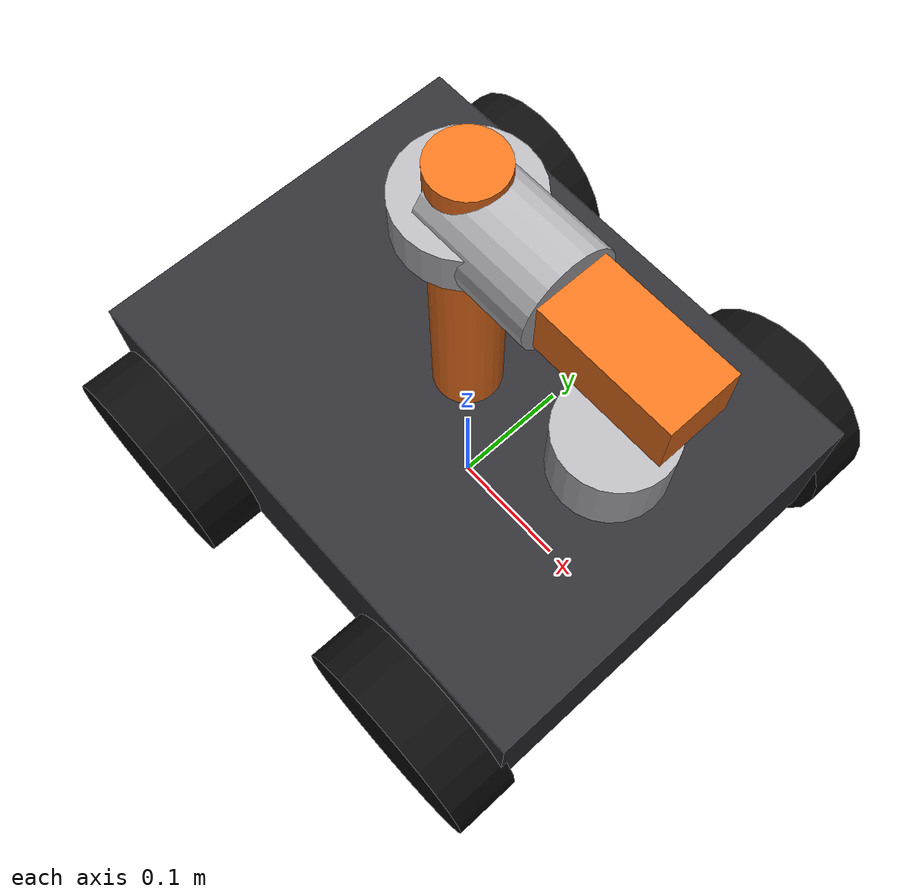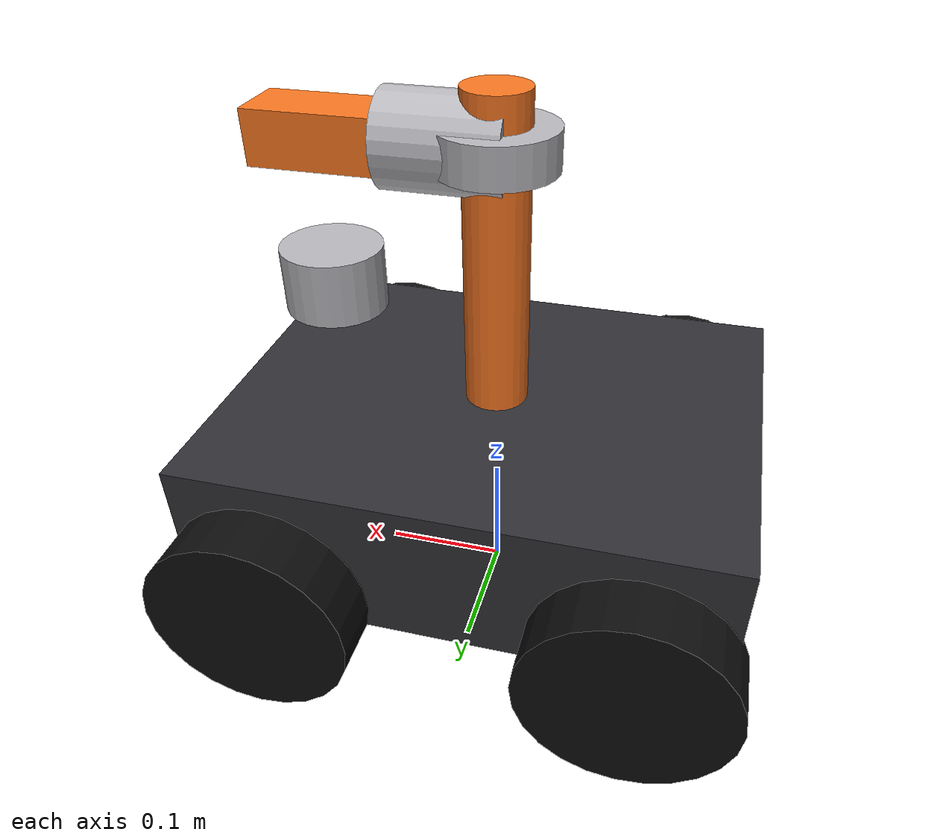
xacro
<?xml version="1.0"?>
<robot name="orbit_camera_bot" xmlns:xacro="http://www.ros.org/wiki/xacro">
  <xacro:arg name="use_sim_time" default="true"/>

  <material name="charcoal">
    <color rgba="0.18 0.18 0.2 1.0"/>
  </material>
  <material name="orange">
    <color rgba="0.95 0.45 0.12 1.0"/>
  </material>
  <material name="gray">
    <color rgba="0.7 0.7 0.72 1.0"/>
  </material>
  <material name="black">
    <color rgba="0.05 0.05 0.05 1.0"/>
  </material>

  <link name="base_link">
    <visual>
      <origin xyz="0 0 0.12" rpy="0 0 0"/>
      <geometry>
        <box size="0.42 0.32 0.12"/>
      </geometry>
      <material name="charcoal"/>
    </visual>
    <collision>
      <origin xyz="0 0 0.12" rpy="0 0 0"/>
      <geometry>
        <box size="0.42 0.32 0.12"/>
      </geometry>
    </collision>
    <inertial>
      <origin xyz="0 0 0.12" rpy="0 0 0"/>
      <mass value="12.0"/>
      <inertia ixx="0.25" ixy="0.0" ixz="0.0" iyy="0.32" iyz="0.0" izz="0.41"/>
    </inertial>
  </link>

  <link name="front_left_wheel_link">
    <visual>
      <origin xyz="0 0 0" rpy="1.5708 0 0"/>
      <geometry>
        <cylinder radius="0.08" length="0.05"/>
      </geometry>
      <material name="black"/>
    </visual>
    <collision>
      <origin xyz="0 0 0" rpy="1.5708 0 0"/>
      <geometry>
        <cylinder radius="0.08" length="0.05"/>
      </geometry>
    </collision>
    <inertial>
      <mass value="1.0"/>
      <inertia ixx="0.003" ixy="0.0" ixz="0.0" iyy="0.003" iyz="0.0" izz="0.0015"/>
    </inertial>
  </link>

  <joint name="front_left_wheel_joint" type="continuous">
    <parent link="base_link"/>
    <child link="front_left_wheel_link"/>
    <origin xyz="0.14 0.18 0.08" rpy="0 0 0"/>
    <axis xyz="0 1 0"/>
    <dynamics damping="0.08" friction="0.02"/>
  </joint>

  <link name="rear_left_wheel_link">
    <visual>
      <origin xyz="0 0 0" rpy="1.5708 0 0"/>
      <geometry>
        <cylinder radius="0.08" length="0.05"/>
      </geometry>
      <material name="black"/>
    </visual>
    <collision>
      <origin xyz="0 0 0" rpy="1.5708 0 0"/>
      <geometry>
        <cylinder radius="0.08" length="0.05"/>
      </geometry>
    </collision>
    <inertial>
      <mass value="1.0"/>
      <inertia ixx="0.003" ixy="0.0" ixz="0.0" iyy="0.003" iyz="0.0" izz="0.0015"/>
    </inertial>
  </link>

  <joint name="rear_left_wheel_joint" type="continuous">
    <parent link="base_link"/>
    <child link="rear_left_wheel_link"/>
    <origin xyz="-0.14 0.18 0.08" rpy="0 0 0"/>
    <axis xyz="0 1 0"/>
    <dynamics damping="0.08" friction="0.02"/>
  </joint>

  <link name="front_right_wheel_link">
    <visual>
      <origin xyz="0 0 0" rpy="1.5708 0 0"/>
      <geometry>
        <cylinder radius="0.08" length="0.05"/>
      </geometry>
      <material name="black"/>
    </visual>
    <collision>
      <origin xyz="0 0 0" rpy="1.5708 0 0"/>
      <geometry>
        <cylinder radius="0.08" length="0.05"/>
      </geometry>
    </collision>
    <inertial>
      <mass value="1.0"/>
      <inertia ixx="0.003" ixy="0.0" ixz="0.0" iyy="0.003" iyz="0.0" izz="0.0015"/>
    </inertial>
  </link>

  <joint name="front_right_wheel_joint" type="continuous">
    <parent link="base_link"/>
    <child link="front_right_wheel_link"/>
    <origin xyz="0.14 -0.18 0.08" rpy="0 0 0"/>
    <axis xyz="0 1 0"/>
    <dynamics damping="0.08" friction="0.02"/>
  </joint>

  <link name="rear_right_wheel_link">
    <visual>
      <origin xyz="0 0 0" rpy="1.5708 0 0"/>
      <geometry>
        <cylinder radius="0.08" length="0.05"/>
      </geometry>
      <material name="black"/>
    </visual>
    <collision>
      <origin xyz="0 0 0" rpy="1.5708 0 0"/>
      <geometry>
        <cylinder radius="0.08" length="0.05"/>
      </geometry>
    </collision>
    <inertial>
      <mass value="1.0"/>
      <inertia ixx="0.003" ixy="0.0" ixz="0.0" iyy="0.003" iyz="0.0" izz="0.0015"/>
    </inertial>
  </link>

  <joint name="rear_right_wheel_joint" type="continuous">
    <parent link="base_link"/>
    <child link="rear_right_wheel_link"/>
    <origin xyz="-0.14 -0.18 0.08" rpy="0 0 0"/>
    <axis xyz="0 1 0"/>
    <dynamics damping="0.08" friction="0.02"/>
  </joint>

  <link name="mast_link">
    <visual>
      <origin xyz="0 0 0.12" rpy="0 0 0"/>
      <geometry>
        <cylinder radius="0.025" length="0.24"/>
      </geometry>
      <material name="orange"/>
    </visual>
    <collision>
      <origin xyz="0 0 0.12" rpy="0 0 0"/>
      <geometry>
        <cylinder radius="0.025" length="0.24"/>
      </geometry>
    </collision>
    <inertial>
      <mass value="0.5"/>
      <inertia ixx="0.001" ixy="0.0" ixz="0.0" iyy="0.001" iyz="0.0" izz="0.0004"/>
    </inertial>
  </link>

  <joint name="mast_joint" type="fixed">
    <parent link="base_link"/>
    <child link="mast_link"/>
    <origin xyz="0.0 0.0 0.18" rpy="0 0 0"/>
  </joint>

  <link name="camera_pan_link">
    <visual>
      <origin xyz="0 0 0" rpy="0 0 0"/>
      <geometry>
        <cylinder radius="0.045" length="0.03"/>
      </geometry>
      <material name="gray"/>
    </visual>
    <collision>
      <origin xyz="0 0 0" rpy="0 0 0"/>
      <geometry>
        <cylinder radius="0.045" length="0.03"/>
      </geometry>
    </collision>
    <inertial>
      <mass value="0.3"/>
      <inertia ixx="0.0004" ixy="0.0" ixz="0.0" iyy="0.0004" iyz="0.0" izz="0.0002"/>
    </inertial>
  </link>

  <joint name="camera_pan_joint" type="revolute">
    <parent link="mast_link"/>
    <child link="camera_pan_link"/>
    <origin xyz="0 0 0.20" rpy="0 0 0"/>
    <axis xyz="0 0 1"/>
    <limit lower="-3.14159" upper="3.14159" effort="4.0" velocity="2.0"/>
    <dynamics damping="0.15"/>
  </joint>

  <link name="camera_tilt_link">
    <visual>
      <origin xyz="0 0 0" rpy="0 1.5708 0"/>
      <geometry>
        <cylinder radius="0.035" length="0.09"/>
      </geometry>
      <material name="gray"/>
    </visual>
    <collision>
      <origin xyz="0 0 0" rpy="0 1.5708 0"/>
      <geometry>
        <cylinder radius="0.035" length="0.09"/>
      </geometry>
    </collision>
    <inertial>
      <mass value="0.25"/>
      <inertia ixx="0.00035" ixy="0.0" ixz="0.0" iyy="0.0002" iyz="0.0" izz="0.00035"/>
    </inertial>
  </link>

  <joint name="camera_tilt_joint" type="revolute">
    <parent link="camera_pan_link"/>
    <child link="camera_tilt_link"/>
    <origin xyz="0.035 0 0" rpy="0 0 0"/>
    <axis xyz="0 1 0"/>
    <limit lower="-0.9" upper="0.7" effort="3.0" velocity="1.5"/>
    <dynamics damping="0.12"/>
  </joint>

  <link name="camera_link">
    <visual>
      <origin xyz="0.06 0 0" rpy="0 0 0"/>
      <geometry>
        <box size="0.10 0.05 0.04"/>
      </geometry>
      <material name="orange"/>
    </visual>
    <collision>
      <origin xyz="0.06 0 0" rpy="0 0 0"/>
      <geometry>
        <box size="0.10 0.05 0.04"/>
      </geometry>
    </collision>
    <inertial>
      <mass value="0.35"/>
      <inertia ixx="0.0008" ixy="0.0" ixz="0.0" iyy="0.0008" iyz="0.0" izz="0.0008"/>
    </inertial>
  </link>

  <joint name="camera_mount_joint" type="fixed">
    <parent link="camera_tilt_link"/>
    <child link="camera_link"/>
    <origin xyz="0.03 0 0" rpy="0 0 0"/>
  </joint>

  <link name="camera_optical_frame"/>
  <joint name="camera_optical_joint" type="fixed">
    <parent link="camera_link"/>
    <child link="camera_optical_frame"/>
    <origin xyz="0.08 0 0" rpy="-1.5708 0 -1.5708"/>
  </joint>

  <link name="laser_link">
    <visual>
      <origin xyz="0 0 0" rpy="0 0 0"/>
      <geometry>
        <cylinder radius="0.04" length="0.05"/>
      </geometry>
      <material name="gray"/>
    </visual>
    <collision>
      <origin xyz="0 0 0" rpy="0 0 0"/>
      <geometry>
        <cylinder radius="0.04" length="0.05"/>
      </geometry>
    </collision>
    <inertial>
      <mass value="0.3"/>
      <inertia ixx="0.0005" ixy="0.0" ixz="0.0" iyy="0.0005" iyz="0.0" izz="0.0005"/>
    </inertial>
  </link>

  <joint name="laser_joint" type="fixed">
    <parent link="base_link"/>
    <child link="laser_link"/>
    <origin xyz="0.13 0 0.27" rpy="0 0 0"/>
  </joint>

  <link name="imu_link">
    <visual>
      <origin xyz="0 0 0" rpy="0 0 0"/>
      <geometry>
        <box size="0.035 0.025 0.015"/>
      </geometry>
      <material name="gray"/>
    </visual>
    <collision>
      <origin xyz="0 0 0" rpy="0 0 0"/>
      <geometry>
        <box size="0.035 0.025 0.015"/>
      </geometry>
    </collision>
    <inertial>
      <mass value="0.05"/>
      <inertia ixx="0.00001" ixy="0.0" ixz="0.0" iyy="0.00001" iyz="0.0" izz="0.00001"/>
    </inertial>
  </link>

  <joint name="imu_joint" type="fixed">
    <parent link="base_link"/>
    <child link="imu_link"/>
    <origin xyz="0.0 0.0 0.22" rpy="0 0 0"/>
  </joint>

  <ros2_control name="GazeboSystem" type="system">
    <hardware>
      <plugin>gazebo_ros2_control/GazeboSystem</plugin>
    </hardware>
    <joint name="camera_pan_joint">
      <command_interface name="position"/>
      <state_interface name="position"/>
      <state_interface name="velocity"/>
    </joint>
    <joint name="camera_tilt_joint">
      <command_interface name="position"/>
      <state_interface name="position"/>
      <state_interface name="velocity"/>
    </joint>
  </ros2_control>

  <gazebo>
    <plugin filename="libgazebo_ros2_control.so" name="gazebo_ros2_control">
      <parameters>$(find my_robot_description)/config/controllers.yaml</parameters>
    </plugin>
  </gazebo>

  <gazebo reference="base_link">
    <material>Gazebo/DarkGrey</material>
  </gazebo>

  <gazebo reference="front_left_wheel_link">
    <material>Gazebo/Black</material>
    <mu1>0.8</mu1>
    <mu2>0.4</mu2>
    <kp>500000.0</kp>
    <kd>0.5</kd>
  </gazebo>

  <gazebo reference="rear_left_wheel_link">
    <material>Gazebo/Black</material>
    <mu1>1.2</mu1>
    <mu2>0.8</mu2>
    <kp>500000.0</kp>
    <kd>0.5</kd>
  </gazebo>

  <gazebo reference="front_right_wheel_link">
    <material>Gazebo/Black</material>
    <mu1>0.8</mu1>
    <mu2>0.4</mu2>
    <kp>500000.0</kp>
    <kd>0.5</kd>
  </gazebo>

  <gazebo reference="rear_right_wheel_link">
    <material>Gazebo/Black</material>
    <mu1>1.2</mu1>
    <mu2>0.8</mu2>
    <kp>500000.0</kp>
    <kd>0.5</kd>
  </gazebo>

  <gazebo>
    <plugin name="skid_steer_drive_controller" filename="libgazebo_ros_diff_drive.so">
      <ros>
        <namespace>/</namespace>
      </ros>
      <update_rate>50</update_rate>
      <num_wheel_pairs>2</num_wheel_pairs>
      <left_joint>front_left_wheel_joint</left_joint>
      <right_joint>front_right_wheel_joint</right_joint>
      <left_joint>rear_left_wheel_joint</left_joint>
      <right_joint>rear_right_wheel_joint</right_joint>
      <wheel_separation>0.36</wheel_separation>
      <wheel_separation>0.36</wheel_separation>
      <wheel_diameter>0.16</wheel_diameter>
      <wheel_diameter>0.16</wheel_diameter>
      <max_wheel_torque>10.0</max_wheel_torque>
      <publish_odom>true</publish_odom>
      <publish_odom_tf>false</publish_odom_tf>
      <publish_wheel_tf>true</publish_wheel_tf>
      <publish_wheel_joint_state>true</publish_wheel_joint_state>
      <odometry_topic>odom</odometry_topic>
      <odometry_frame>odom</odometry_frame>
      <robot_base_frame>base_link</robot_base_frame>
      <command_topic>cmd_vel</command_topic>
    </plugin>
  </gazebo>

  <gazebo reference="laser_link">
    <sensor name="lidar_sensor" type="ray">
      <always_on>true</always_on>
      <visualize>true</visualize>
      <update_rate>12.0</update_rate>
      <pose>0 0 0 0 0 0</pose>
      <ray>
        <scan>
          <horizontal>
            <samples>720</samples>
            <resolution>1</resolution>
            <min_angle>-3.14159</min_angle>
            <max_angle>3.14159</max_angle>
          </horizontal>
        </scan>
        <range>
          <min>0.12</min>
          <max>12.0</max>
          <resolution>0.01</resolution>
        </range>
      </ray>
      <plugin name="gazebo_ros_laser" filename="libgazebo_ros_ray_sensor.so">
        <ros>
          <remapping>~/out:=scan</remapping>
        </ros>
        <output_type>sensor_msgs/LaserScan</output_type>
        <frame_name>laser_link</frame_name>
      </plugin>
    </sensor>

    <sensor name="lidar3d_sensor" type="ray">
      <always_on>true</always_on>
      <visualize>false</visualize>
      <update_rate>10.0</update_rate>
      <pose>0 0 0 0 0 0</pose>
      <ray>
        <scan>
          <horizontal>
            <samples>360</samples>
            <resolution>1</resolution>
            <min_angle>-3.14159</min_angle>
            <max_angle>3.14159</max_angle>
          </horizontal>
          <vertical>
            <samples>16</samples>
            <resolution>1</resolution>
            <min_angle>-0.35</min_angle>
            <max_angle>0.35</max_angle>
          </vertical>
        </scan>
        <range>
          <min>0.12</min>
          <max>12.0</max>
          <resolution>0.02</resolution>
        </range>
      </ray>
      <plugin name="gazebo_ros_lidar3d" filename="libgazebo_ros_ray_sensor.so">
        <ros>
          <remapping>~/out:=points_raw</remapping>
        </ros>
        <output_type>sensor_msgs/PointCloud2</output_type>
        <frame_name>laser_link</frame_name>
      </plugin>
    </sensor>
  </gazebo>

  <gazebo reference="imu_link">
    <sensor name="imu_sensor" type="imu">
      <always_on>true</always_on>
      <visualize>false</visualize>
      <update_rate>100.0</update_rate>
      <pose>0 0 0 0 0 0</pose>
      <plugin name="gazebo_ros_imu" filename="libgazebo_ros_imu_sensor.so">
        <ros>
          <remapping>~/out:=imu/data</remapping>
        </ros>
        <frame_name>imu_link</frame_name>
        <initial_orientation_as_reference>false</initial_orientation_as_reference>
      </plugin>
    </sensor>
  </gazebo>

  <gazebo reference="camera_link">
    <sensor name="camera" type="camera">
      <always_on>true</always_on>
      <update_rate>20</update_rate>
      <pose>0 0 0 0 0 0</pose>
      <camera>
        <horizontal_fov>1.22173</horizontal_fov>
        <image>
          <width>640</width>
          <height>480</height>
          <format>R8G8B8</format>
        </image>
        <clip>
          <near>0.05</near>
          <far>30.0</far>
        </clip>
      </camera>
      <plugin name="gazebo_ros_camera" filename="libgazebo_ros_camera.so">
        <camera_name>camera</camera_name>
        <ros>
          <namespace>/</namespace>
          <remapping>image_raw:=camera/image_raw</remapping>
          <remapping>camera_info:=camera/camera_info</remapping>
        </ros>
        <frame_name>camera_optical_frame</frame_name>
      </plugin>
    </sensor>
  </gazebo>
</robot>
